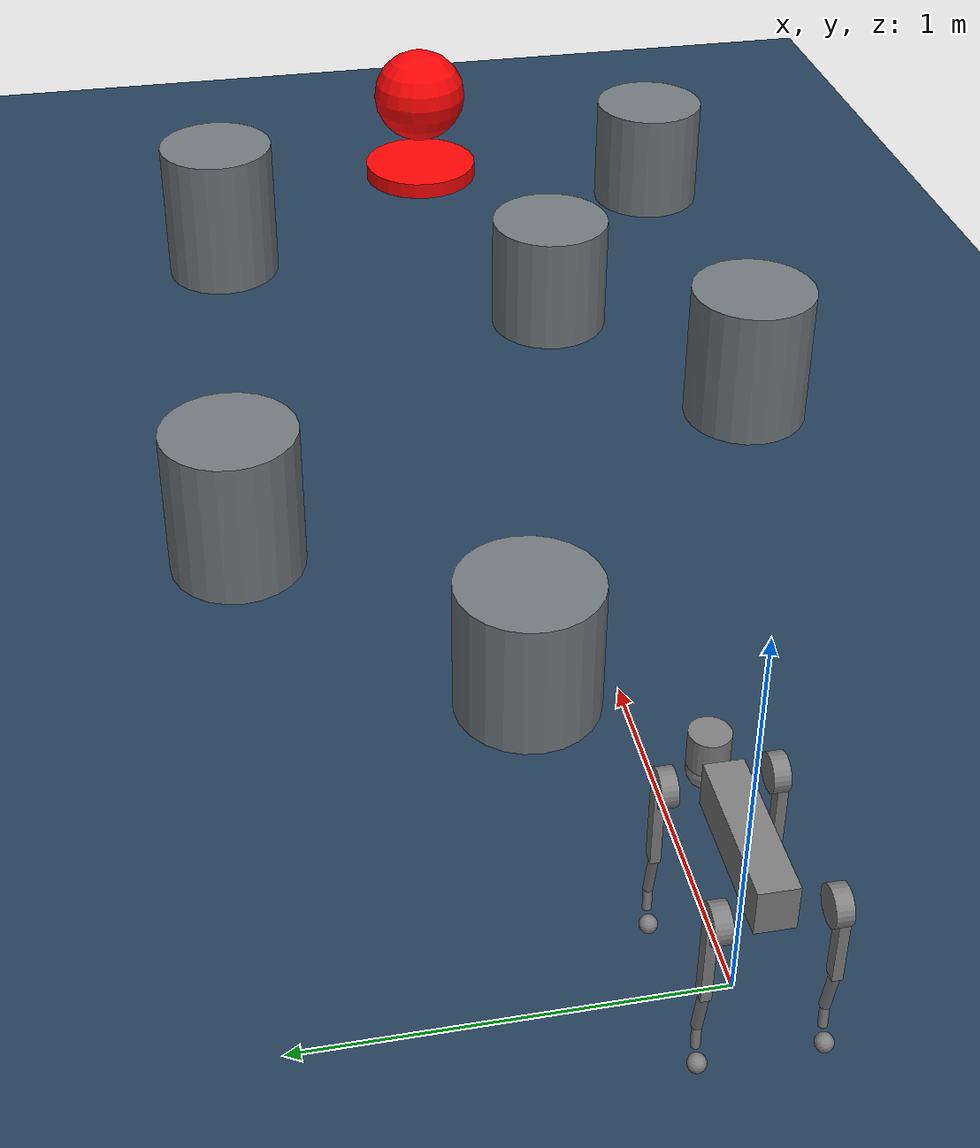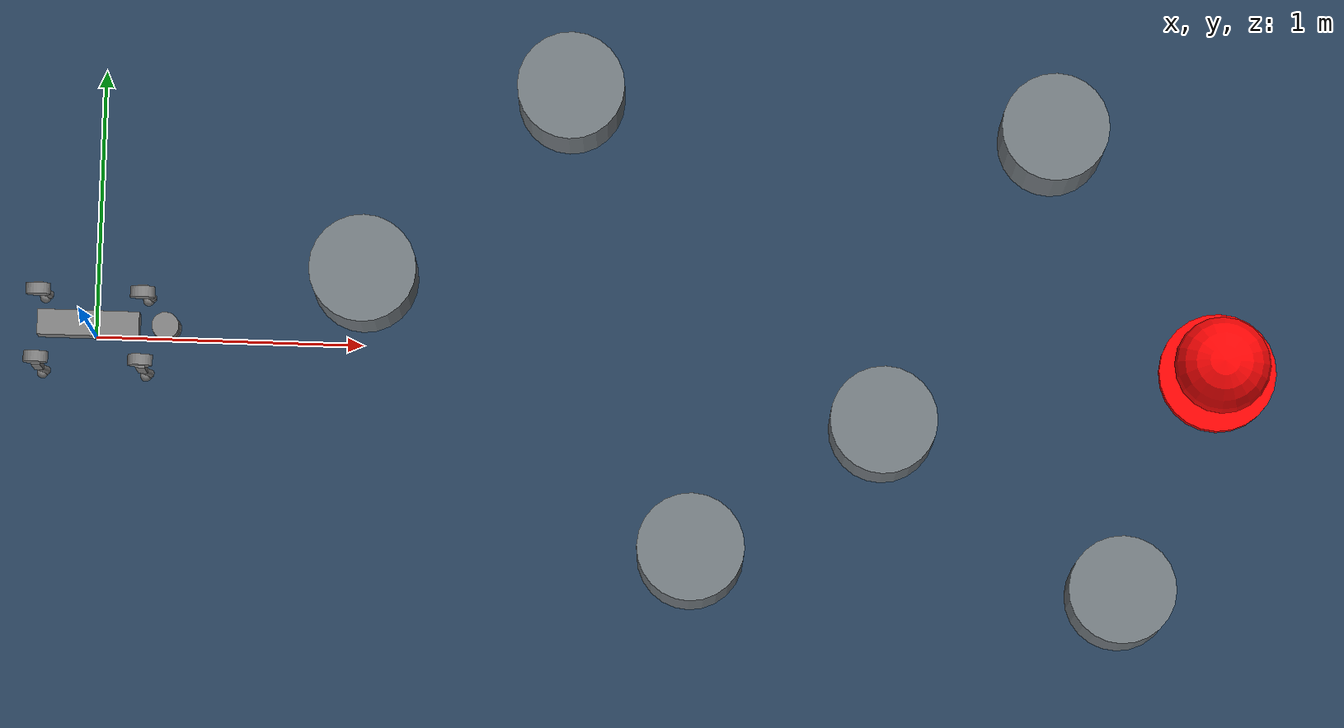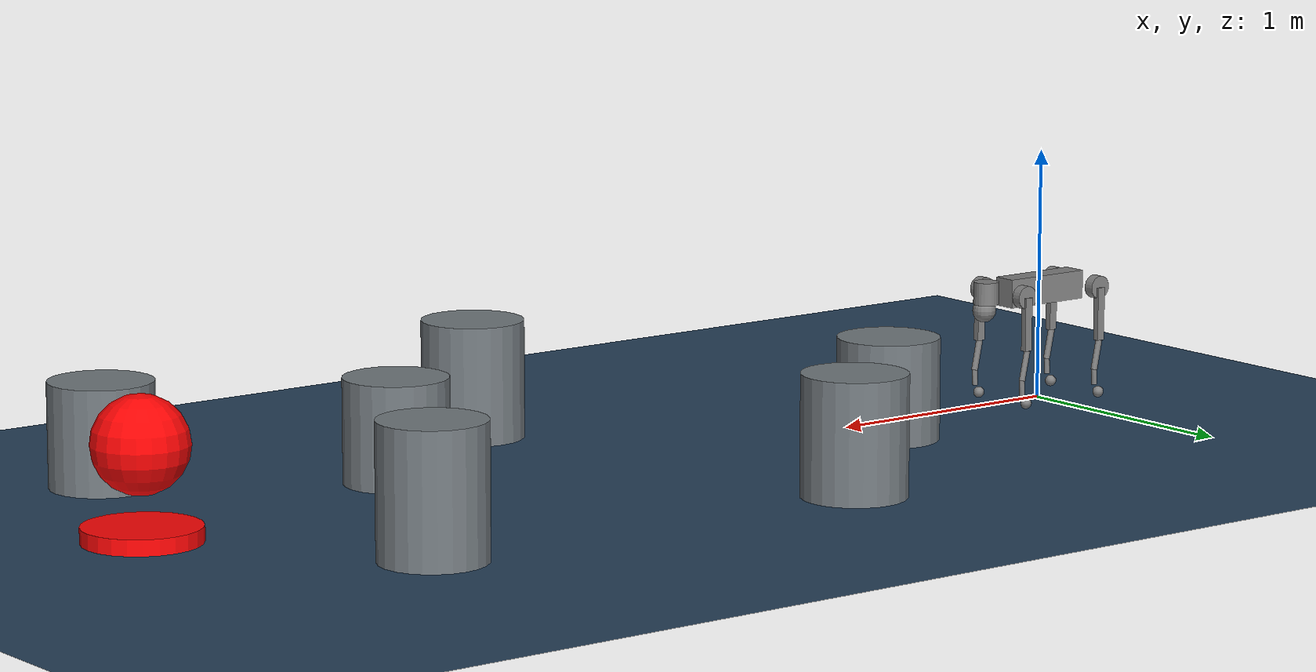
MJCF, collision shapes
<mujoco model="go2 obstacle scene">
  <include file="go2.xml"/>

  <statistic center="1.5 0 0.1" extent="4.0"/>

  <visual>
    <headlight diffuse="0.6 0.6 0.6" ambient="0.3 0.3 0.3" specular="0 0 0"/>
    <rgba haze="0.15 0.25 0.35 1"/>
    <global azimuth="-130" elevation="-20"/>
  </visual>

  <asset>
    <texture type="skybox" builtin="gradient" rgb1="0.3 0.5 0.7" rgb2="0 0 0" width="512" height="3072"/>
    <texture type="2d" name="groundplane" builtin="checker" mark="edge" rgb1="0.2 0.3 0.4" rgb2="0.1 0.2 0.3"
      markrgb="0.8 0.8 0.8" width="300" height="300"/>
    <material name="groundplane" texture="groundplane" texuniform="true" texrepeat="8 8" reflectance="0.2"/>
    <material name="obstacle_gray" rgba="0.45 0.48 0.50 1"/>
    <material name="obstacle_blue" rgba="0.10 0.30 0.65 1"/>
    <material name="target_red" rgba="1.0 0.02 0.02 1" emission="0.2"/>
  </asset>

  <worldbody>
    <light pos="0 0 3.0" dir="0 0 -1" directional="true"/>
    <light pos="2 -3 2.5" dir="-0.4 0.5 -1" directional="true" diffuse="0.4 0.4 0.4"/>
    <geom name="floor" size="0 0 0.05" type="plane" material="groundplane"/>

    <!-- Static obstacles form a staggered slalom, blocking the direct path while leaving side gaps. -->
    <geom name="obstacle_cylinder_center_1" type="cylinder" pos="1.0 0.25 0.20" size="0.20 0.20" material="obstacle_gray"/>
    <geom name="obstacle_cylinder_left_1" type="cylinder" pos="1.75 0.95 0.23" size="0.20 0.23" material="obstacle_gray"/>
    <geom name="obstacle_cylinder_right_1" type="cylinder" pos="2.25 -0.75 0.23" size="0.20 0.23" material="obstacle_gray"/>
    <geom name="obstacle_cylinder_center_2" type="cylinder" pos="2.95 -0.25 0.20" size="0.20 0.20" material="obstacle_gray"/>
    <geom name="obstacle_cylinder_left_2" type="cylinder" pos="3.55 0.85 0.25" size="0.20 0.25" material="obstacle_gray"/>
    <geom name="obstacle_cylinder_right_2" type="cylinder" pos="3.85 -0.85 0.20" size="0.20 0.20" material="obstacle_gray"/>

    <!-- Visual goal marker. Collision is disabled so reaching the target does not trip the robot. -->
    <geom name="red_target_base" type="cylinder" pos="4.2 0.0 0.03" size="0.22 0.03" material="target_red" contype="0" conaffinity="0"/>
    <geom name="red_target" type="sphere" pos="4.2 0.0 0.35" size="0.18" material="target_red" contype="0" conaffinity="0"/>
  </worldbody>
</mujoco>

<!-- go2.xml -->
<mujoco model="go2">
  <compiler angle="radian" meshdir="assets" autolimits="true"/>

  <option cone="elliptic" impratio="100"/>

  <default>
    <default class="go2">
      <geom friction="0.6" margin="0.001" condim="1"/>
      <joint axis="0 1 0" damping="2" armature="0.01" frictionloss="0.2"/>
      <motor ctrlrange="-23.7 23.7"/>
      <default class="abduction">
        <joint axis="1 0 0" range="-1.0472 1.0472"/>
      </default>
      <default class="hip">
        <default class="front_hip">
          <joint range="-1.5708 3.4907"/>
        </default>
        <default class="back_hip">
          <joint range="-0.5236 4.5379"/>
        </default>
      </default>
      <default class="knee">
        <joint range="-2.7227 -0.83776"/>
        <motor ctrlrange="-45.43 45.43"/>
      </default>
      <default class="visual">
        <geom type="mesh" contype="0" conaffinity="0" group="2"/>
      </default>
      <default class="collision">
        <geom group="3"/>
        <default class="foot">
          <geom size="0.022" pos="-0.002 0 -0.213" priority="1" solimp="0.015 1 0.022" condim="6"
            friction="0.8 0.02 0.01"/>
        </default>
      </default>
    </default>
  </default>

  <asset>
    <material name="metal" rgba=".9 .95 .95 1"/>
    <material name="black" rgba="0 0 0 1"/>
    <material name="white" rgba="1 1 1 1"/>
    <material name="gray" rgba="0.671705 0.692426 0.774270 1"/>

    <mesh file="base_0.obj"/>
    <mesh file="base_1.obj"/>
    <mesh file="base_2.obj"/>
    <mesh file="base_3.obj"/>
    <mesh file="base_4.obj"/>
    <mesh file="hip_0.obj"/>
    <mesh file="hip_1.obj"/>
    <mesh file="thigh_0.obj"/>
    <mesh file="thigh_1.obj"/>
    <mesh file="thigh_mirror_0.obj"/>
    <mesh file="thigh_mirror_1.obj"/>
    <mesh file="calf_0.obj"/>
    <mesh file="calf_1.obj"/>
    <mesh file="calf_mirror_0.obj"/>
    <mesh file="calf_mirror_1.obj"/>
    <mesh file="foot.obj"/>
  </asset>

  <worldbody>
    <body name="base" pos="0 0 0.445" childclass="go2">
      <inertial pos="0.021112 0 -0.005366" quat="-0.000543471 0.713435 -0.00173769 0.700719" mass="6.921"
        diaginertia="0.107027 0.0980771 0.0244531"/>
      <freejoint/>
      <geom mesh="base_0" material="black" class="visual"/>
      <geom mesh="base_1" material="black" class="visual"/>
      <geom mesh="base_2" material="black" class="visual"/>
      <geom mesh="base_3" material="white" class="visual"/>
      <geom mesh="base_4" material="gray" class="visual"/>
      <geom size="0.1881 0.04675 0.057" type="box" class="collision"/>
      <geom size="0.05 0.045" pos="0.285 0 0.01" type="cylinder" class="collision"/>
      <geom size="0.047" pos="0.293 0 -0.06" class="collision"/>
      <site name="imu" pos="-0.02557 0 0.04232"/>
      <camera name="fpv" pos="0.32 0 0.03" xyaxes="0 -1 0 0 0 1"/>
      <body name="FL_hip" pos="0.1934 0.0465 0">
        <inertial pos="-0.0054 0.00194 -0.000105" quat="0.497014 0.499245 0.505462 0.498237" mass="0.678"
          diaginertia="0.00088403 0.000596003 0.000479967"/>
        <joint name="FL_hip_joint" class="abduction"/>
        <geom mesh="hip_0" material="metal" class="visual"/>
        <geom mesh="hip_1" material="gray" class="visual"/>
        <geom size="0.046 0.02" pos="0 0.08 0" quat="1 1 0 0" type="cylinder" class="collision"/>
        <body name="FL_thigh" pos="0 0.0955 0">
          <inertial pos="-0.00374 -0.0223 -0.0327" quat="0.829533 0.0847635 -0.0200632 0.551623" mass="1.152"
            diaginertia="0.00594973 0.00584149 0.000878787"/>
          <joint name="FL_thigh_joint" class="front_hip"/>
          <geom mesh="thigh_0" material="metal" class="visual"/>
          <geom mesh="thigh_1" material="gray" class="visual"/>
          <geom size="0.1065 0.01225 0.017" pos="0 0 -0.1065" quat="0.707107 0 0.707107 0" type="box" class="collision"/>
          <body name="FL_calf" pos="0 0 -0.213">
            <inertial pos="0.00629595 -0.000622121 -0.141417" quat="0.710672 0.00154099 -0.00450087 0.703508"
              mass="0.241352" diaginertia="0.0014901 0.00146356 5.31397e-05"/>
            <joint name="FL_calf_joint" class="knee"/>
            <geom mesh="calf_0" material="gray" class="visual"/>
            <geom mesh="calf_1" material="black" class="visual"/>
            <geom size="0.012 0.06" pos="0.008 0 -0.06" quat="0.994493 0 -0.104807 0" type="cylinder" class="collision"/>
            <geom size="0.011 0.0325" pos="0.02 0 -0.148" quat="0.999688 0 0.0249974 0" type="cylinder" class="collision"/>
            <geom pos="0 0 -0.213" mesh="foot" class="visual" material="black"/>
            <geom name="FL" class="foot"/>
          </body>
        </body>
      </body>
      <body name="FR_hip" pos="0.1934 -0.0465 0">
        <inertial pos="-0.0054 -0.00194 -0.000105" quat="0.498237 0.505462 0.499245 0.497014" mass="0.678"
          diaginertia="0.00088403 0.000596003 0.000479967"/>
        <joint name="FR_hip_joint" class="abduction"/>
        <geom mesh="hip_0" material="metal" class="visual" quat="4.63268e-05 1 0 0"/>
        <geom mesh="hip_1" material="gray" class="visual" quat="4.63268e-05 1 0 0"/>
        <geom size="0.046 0.02" pos="0 -0.08 0" quat="0.707107 0.707107 0 0" type="cylinder" class="collision"/>
        <body name="FR_thigh" pos="0 -0.0955 0">
          <inertial pos="-0.00374 0.0223 -0.0327" quat="0.551623 -0.0200632 0.0847635 0.829533" mass="1.152"
            diaginertia="0.00594973 0.00584149 0.000878787"/>
          <joint name="FR_thigh_joint" class="front_hip"/>
          <geom mesh="thigh_mirror_0" material="metal" class="visual"/>
          <geom mesh="thigh_mirror_1" material="gray" class="visual"/>
          <geom size="0.1065 0.01225 0.017" pos="0 0 -0.1065" quat="0.707107 0 0.707107 0" type="box" class="collision"/>
          <body name="FR_calf" pos="0 0 -0.213">
            <inertial pos="0.00629595 0.000622121 -0.141417" quat="0.703508 -0.00450087 0.00154099 0.710672"
              mass="0.241352" diaginertia="0.0014901 0.00146356 5.31397e-05"/>
            <joint name="FR_calf_joint" class="knee"/>
            <geom mesh="calf_mirror_0" material="gray" class="visual"/>
            <geom mesh="calf_mirror_1" material="black" class="visual"/>
            <geom size="0.013 0.06" pos="0.01 0 -0.06" quat="0.995004 0 -0.0998334 0" type="cylinder" class="collision"/>
            <geom size="0.011 0.0325" pos="0.02 0 -0.148" quat="0.999688 0 0.0249974 0" type="cylinder" class="collision"/>
            <geom pos="0 0 -0.213" mesh="foot" class="visual" material="black"/>
            <geom name="FR" class="foot"/>
          </body>
        </body>
      </body>
      <body name="RL_hip" pos="-0.1934 0.0465 0">
        <inertial pos="0.0054 0.00194 -0.000105" quat="0.505462 0.498237 0.497014 0.499245" mass="0.678"
          diaginertia="0.00088403 0.000596003 0.000479967"/>
        <joint name="RL_hip_joint" class="abduction"/>
        <geom mesh="hip_0" material="metal" class="visual" quat="4.63268e-05 0 1 0"/>
        <geom mesh="hip_1" material="gray" class="visual" quat="4.63268e-05 0 1 0"/>
        <geom size="0.046 0.02" pos="0 0.08 0" quat="0.707107 0.707107 0 0" type="cylinder" class="collision"/>
        <body name="RL_thigh" pos="0 0.0955 0">
          <inertial pos="-0.00374 -0.0223 -0.0327" quat="0.829533 0.0847635 -0.0200632 0.551623" mass="1.152"
            diaginertia="0.00594973 0.00584149 0.000878787"/>
          <joint name="RL_thigh_joint" class="back_hip"/>
          <geom mesh="thigh_0" material="metal" class="visual"/>
          <geom mesh="thigh_1" material="gray" class="visual"/>
          <geom size="0.1065 0.01225 0.017" pos="0 0 -0.1065" quat="0.707107 0 0.707107 0" type="box" class="collision"/>
          <body name="RL_calf" pos="0 0 -0.213">
            <inertial pos="0.00629595 -0.000622121 -0.141417" quat="0.710672 0.00154099 -0.00450087 0.703508"
              mass="0.241352" diaginertia="0.0014901 0.00146356 5.31397e-05"/>
            <joint name="RL_calf_joint" class="knee"/>
            <geom mesh="calf_0" material="gray" class="visual"/>
            <geom mesh="calf_1" material="black" class="visual"/>
            <geom size="0.013 0.06" pos="0.01 0 -0.06" quat="0.995004 0 -0.0998334 0" type="cylinder" class="collision"/>
            <geom size="0.011 0.0325" pos="0.02 0 -0.148" quat="0.999688 0 0.0249974 0" type="cylinder" class="collision"/>
            <geom pos="0 0 -0.213" mesh="foot" class="visual" material="black"/>
            <geom name="RL" class="foot"/>
          </body>
        </body>
      </body>
      <body name="RR_hip" pos="-0.1934 -0.0465 0">
        <inertial pos="0.0054 -0.00194 -0.000105" quat="0.499245 0.497014 0.498237 0.505462" mass="0.678"
          diaginertia="0.00088403 0.000596003 0.000479967"/>
        <joint name="RR_hip_joint" class="abduction"/>
        <geom mesh="hip_0" material="metal" class="visual" quat="2.14617e-09 4.63268e-05 4.63268e-05 -1"/>
        <geom mesh="hip_1" material="gray" class="visual" quat="2.14617e-09 4.63268e-05 4.63268e-05 -1"/>
        <geom size="0.046 0.02" pos="0 -0.08 0" quat="0.707107 0.707107 0 0" type="cylinder" class="collision"/>
        <body name="RR_thigh" pos="0 -0.0955 0">
          <inertial pos="-0.00374 0.0223 -0.0327" quat="0.551623 -0.0200632 0.0847635 0.829533" mass="1.152"
            diaginertia="0.00594973 0.00584149 0.000878787"/>
          <joint name="RR_thigh_joint" class="back_hip"/>
          <geom mesh="thigh_mirror_0" material="metal" class="visual"/>
          <geom mesh="thigh_mirror_1" material="gray" class="visual"/>
          <geom size="0.1065 0.01225 0.017" pos="0 0 -0.1065" quat="0.707107 0 0.707107 0" type="box" class="collision"/>
          <body name="RR_calf" pos="0 0 -0.213">
            <inertial pos="0.00629595 0.000622121 -0.141417" quat="0.703508 -0.00450087 0.00154099 0.710672"
              mass="0.241352" diaginertia="0.0014901 0.00146356 5.31397e-05"/>
            <joint name="RR_calf_joint" class="knee"/>
            <geom mesh="calf_mirror_0" material="gray" class="visual"/>
            <geom mesh="calf_mirror_1" material="black" class="visual"/>
            <geom size="0.013 0.06" pos="0.01 0 -0.06" quat="0.995004 0 -0.0998334 0" type="cylinder" class="collision"/>
            <geom size="0.011 0.0325" pos="0.02 0 -0.148" quat="0.999688 0 0.0249974 0" type="cylinder" class="collision"/>
            <geom pos="0 0 -0.213" mesh="foot" class="visual" material="black"/>
            <geom name="RR" class="foot"/>
          </body>
        </body>
      </body>
    </body>
  </worldbody>

  <actuator>
    <motor class="abduction" name="FL_hip" joint="FL_hip_joint"/>
    <motor class="hip" name="FL_thigh" joint="FL_thigh_joint"/>
    <motor class="knee" name="FL_calf" joint="FL_calf_joint"/>
    <motor class="abduction" name="FR_hip" joint="FR_hip_joint"/>
    <motor class="hip" name="FR_thigh" joint="FR_thigh_joint"/>
    <motor class="knee" name="FR_calf" joint="FR_calf_joint"/>
    <motor class="abduction" name="RL_hip" joint="RL_hip_joint"/>
    <motor class="hip" name="RL_thigh" joint="RL_thigh_joint"/>
    <motor class="knee" name="RL_calf" joint="RL_calf_joint"/>
    <motor class="abduction" name="RR_hip" joint="RR_hip_joint"/>
    <motor class="hip" name="RR_thigh" joint="RR_thigh_joint"/>
    <motor class="knee" name="RR_calf" joint="RR_calf_joint"/>
  </actuator>

  <keyframe>

    <key
      name="home"
      qpos="0 0 0.33 1 0 0 0 0 0.8 -1.5 0 0.8 -1.5 0 1.0 -1.5 0 1.0 -1.5"
      ctrl="0 0.8 -1.5 0 0.8 -1.5 0 1.0 -1.5 0 1.0 -1.5"/>

  </keyframe>
</mujoco>
